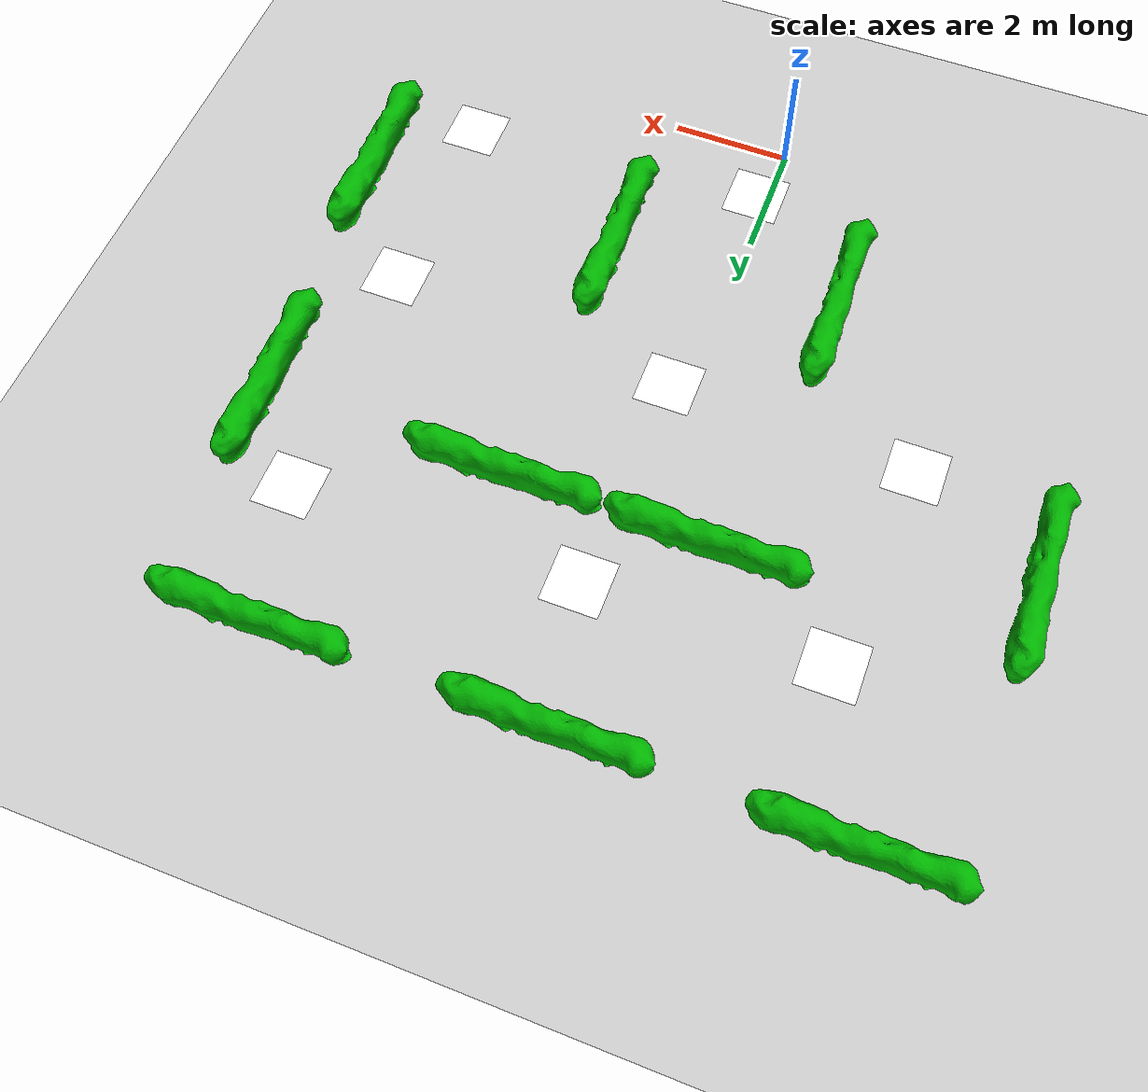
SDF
<sdf version="1.6">
 <world name="default">
  <light name="sun" type="directional">
   <pose>0 0 10 0 -0 0</pose>
   <diffuse>0.8 0.8 0.8 1</diffuse>
   <specular>0.2 0.2 0.2 1</specular>
   <attenuation>
    <range>1000</range>
    <constant>0.9</constant>
    <linear>0.01</linear>
    <quadratic>0.001</quadratic>
   </attenuation>
   <direction>-0.5 0.1 -0.9</direction>
  </light>
  <model name="earth_plane">
   <static>1</static>
   <link name="link">
    <collision name="collision">
     <geometry><plane><normal>0 0 1</normal><size>100 100</size></plane></geometry>
     <surface><friction><ode><mu>100</mu><mu2>50</mu2></ode></friction></surface>
    </collision>
    <visual name="visual">
     <cast_shadows>0</cast_shadows>
     <geometry><plane><normal>0 0 1</normal><size>100 100</size></plane></geometry>
     <material>
      <script>
       <uri>model://earth_plane/materials/scripts</uri>
       <uri>model://earth_plane/materials/textures</uri>
       <name>vrc/earth</name>
      </script>
     </material>
    </visual>
    <velocity_decay><linear>0</linear><angular>0</angular></velocity_decay>
   </link>
  </model>
  <physics name="default_physics" default="0" type="ode">
   <max_step_size>0.001</max_step_size>
   <real_time_factor>1</real_time_factor>
   <real_time_update_rate>1000</real_time_update_rate>
  </physics>
  <scene>
   <ambient>0.4 0.4 0.4 1</ambient>
   <background>0.7 0.7 0.7 1</background>
   <shadows>1</shadows>
   <sky><clouds><speed>12</speed></clouds></sky>
  </scene>
  <spherical_coordinates>
   <surface_model>EARTH_WGS84</surface_model>
   <latitude_deg>0</latitude_deg>
   <longitude_deg>0</longitude_deg>
   <elevation>0</elevation>
   <heading_deg>0</heading_deg>
  </spherical_coordinates>
  <gravity>0 0 -9.8</gravity>
  <magnetic_field>6e-06 2.3e-05 -4.2e-05</magnetic_field>
  <atmosphere type="adiabatic"/>
  <audio><device>default</device></audio>
  <model name="plot_0">
   <link name="link_6">
    <inertial>
     <mass>1</mass>
     <inertia>
      <ixx>0.166667</ixx>
      <ixy>0</ixy>
      <ixz>0</ixz>
      <iyy>0.166667</iyy>
      <iyz>0</iyz>
      <izz>0.166667</izz>
     </inertia>
    </inertial>
    <visual name="visual">
     <pose>0 0 0.35211 0 -0 0</pose>
     <geometry><mesh><uri>model://plot/meshes/plot.stl</uri><scale>1 1 1</scale></mesh></geometry>
     <material>
      <lighting>1</lighting>
      <script><uri>file://media/materials/scripts/gazebo.material</uri><name>Gazebo/Grey</name></script>
      <shader type="pixel"><normal_map>__default__</normal_map></shader>
      <ambient>0.2 0.9 0.1 1</ambient>
      <diffuse>0 0.7 0 1</diffuse>
      <specular>0.01 0.01 0.01 1</specular>
      <emissive>0 0 0 1</emissive>
     </material>
    </visual>
    <collision name="collision">
     <pose>0 0 0.306336 0 -0 0</pose>
     <geometry><mesh><uri>model://plot/meshes/plot.stl</uri><scale>1 1 1</scale></mesh></geometry>
     <surface>
      <friction>
       <ode><mu>1</mu><mu2>1</mu2><fdir1>0 0 0</fdir1><slip1>0</slip1><slip2>0</slip2></ode>
       <torsional>
        <coefficient>1</coefficient>
        <patch_radius>0</patch_radius>
        <surface_radius>0</surface_radius>
        <use_patch_radius>1</use_patch_radius>
        <ode><slip>0</slip></ode>
       </torsional>
      </friction>
      <bounce><restitution_coefficient>0</restitution_coefficient><threshold>1e+06</threshold></bounce>
      <contact>
       <collide_without_contact>0</collide_without_contact>
       <collide_without_contact_bitmask>1</collide_without_contact_bitmask>
       <collide_bitmask>1</collide_bitmask>
       <ode>
        <soft_cfm>0</soft_cfm>
        <soft_erp>0.2</soft_erp>
        <kp>1e+13</kp>
        <kd>1</kd>
        <max_vel>0.01</max_vel>
        <min_depth>0</min_depth>
       </ode>
       <bullet>
        <split_impulse>1</split_impulse>
        <split_impulse_penetration_threshold>-0.01</split_impulse_penetration_threshold>
        <soft_cfm>0</soft_cfm>
        <soft_erp>0.2</soft_erp>
        <kp>1e+13</kp>
        <kd>1</kd>
       </bullet>
      </contact>
     </surface>
    </collision>
   </link>
   <static>1</static>
   <pose>-1.16737 7.66571 0 0 -0 0</pose>
  </model>
  <model name="plot_3">
   <link name="link_6">
    <inertial>
     <mass>1</mass>
     <inertia>
      <ixx>0.166667</ixx>
      <ixy>0</ixy>
      <ixz>0</ixz>
      <iyy>0.166667</iyy>
      <iyz>0</iyz>
      <izz>0.166667</izz>
     </inertia>
    </inertial>
    <visual name="visual">
     <pose>0 0 0.35211 0 -0 0</pose>
     <geometry><mesh><uri>model://plot/meshes/plot.stl</uri><scale>1 1 1</scale></mesh></geometry>
     <material>
      <lighting>1</lighting>
      <script><uri>file://media/materials/scripts/gazebo.material</uri><name>Gazebo/Grey</name></script>
      <shader type="pixel"><normal_map>__default__</normal_map></shader>
      <ambient>0.2 0.9 0.1 1</ambient>
      <diffuse>0 0.7 0 1</diffuse>
      <specular>0.01 0.01 0.01 1</specular>
      <emissive>0 0 0 1</emissive>
     </material>
    </visual>
    <collision name="collision">
     <pose>0 0 0.306336 0 -0 0</pose>
     <geometry><mesh><uri>model://plot/meshes/plot.stl</uri><scale>1 1 1</scale></mesh></geometry>
     <surface>
      <friction>
       <ode><mu>1</mu><mu2>1</mu2><fdir1>0 0 0</fdir1><slip1>0</slip1><slip2>0</slip2></ode>
       <torsional>
        <coefficient>1</coefficient>
        <patch_radius>0</patch_radius>
        <surface_radius>0</surface_radius>
        <use_patch_radius>1</use_patch_radius>
        <ode><slip>0</slip></ode>
       </torsional>
      </friction>
      <bounce><restitution_coefficient>0</restitution_coefficient><threshold>1e+06</threshold></bounce>
      <contact>
       <collide_without_contact>0</collide_without_contact>
       <collide_without_contact_bitmask>1</collide_without_contact_bitmask>
       <collide_bitmask>1</collide_bitmask>
       <ode>
        <soft_cfm>0</soft_cfm>
        <soft_erp>0.2</soft_erp>
        <kp>1e+13</kp>
        <kd>1</kd>
        <max_vel>0.01</max_vel>
        <min_depth>0</min_depth>
       </ode>
       <bullet>
        <split_impulse>1</split_impulse>
        <split_impulse_penetration_threshold>-0.01</split_impulse_penetration_threshold>
        <soft_cfm>0</soft_cfm>
        <soft_erp>0.2</soft_erp>
        <kp>1e+13</kp>
        <kd>1</kd>
       </bullet>
      </contact>
     </surface>
    </collision>
   </link>
   <static>1</static>
   <pose>4.72272 11.1808 0 0 -0 0</pose>
  </model>
  <model name="plot_6">
   <link name="link_6">
    <inertial>
     <mass>1</mass>
     <inertia>
      <ixx>0.166667</ixx>
      <ixy>0</ixy>
      <ixz>0</ixz>
      <iyy>0.166667</iyy>
      <iyz>0</iyz>
      <izz>0.166667</izz>
     </inertia>
    </inertial>
    <visual name="visual">
     <pose>0 0 0.35211 0 -0 0</pose>
     <geometry><mesh><uri>model://plot/meshes/plot.stl</uri><scale>1 1 1</scale></mesh></geometry>
     <material>
      <lighting>1</lighting>
      <script><uri>file://media/materials/scripts/gazebo.material</uri><name>Gazebo/Grey</name></script>
      <shader type="pixel"><normal_map>__default__</normal_map></shader>
      <ambient>0.2 0.9 0.1 1</ambient>
      <diffuse>0 0.7 0 1</diffuse>
      <specular>0.01 0.01 0.01 1</specular>
      <emissive>0 0 0 1</emissive>
     </material>
    </visual>
    <collision name="collision">
     <pose>0 0 0.306336 0 -0 0</pose>
     <geometry><mesh><uri>model://plot/meshes/plot.stl</uri><scale>1 1 1</scale></mesh></geometry>
     <surface>
      <friction>
       <ode><mu>1</mu><mu2>1</mu2><fdir1>0 0 0</fdir1><slip1>0</slip1><slip2>0</slip2></ode>
       <torsional>
        <coefficient>1</coefficient>
        <patch_radius>0</patch_radius>
        <surface_radius>0</surface_radius>
        <use_patch_radius>1</use_patch_radius>
        <ode><slip>0</slip></ode>
       </torsional>
      </friction>
      <bounce><restitution_coefficient>0</restitution_coefficient><threshold>1e+06</threshold></bounce>
      <contact>
       <collide_without_contact>0</collide_without_contact>
       <collide_without_contact_bitmask>1</collide_without_contact_bitmask>
       <collide_bitmask>1</collide_bitmask>
       <ode>
        <soft_cfm>0</soft_cfm>
        <soft_erp>0.2</soft_erp>
        <kp>1e+13</kp>
        <kd>1</kd>
        <max_vel>0.01</max_vel>
        <min_depth>0</min_depth>
       </ode>
       <bullet>
        <split_impulse>1</split_impulse>
        <split_impulse_penetration_threshold>-0.01</split_impulse_penetration_threshold>
        <soft_cfm>0</soft_cfm>
        <soft_erp>0.2</soft_erp>
        <kp>1e+13</kp>
        <kd>1</kd>
       </bullet>
      </contact>
     </surface>
    </collision>
   </link>
   <static>1</static>
   <pose>-4.59771 11.2555 0 0 -0 0</pose>
  </model>
  <model name="plot_7">
   <link name="link_6">
    <inertial>
     <mass>1</mass>
     <inertia>
      <ixx>0.166667</ixx>
      <ixy>0</ixy>
      <ixz>0</ixz>
      <iyy>0.166667</iyy>
      <iyz>0</iyz>
      <izz>0.166667</izz>
     </inertia>
    </inertial>
    <visual name="visual">
     <pose>0 0 0.35211 0 -0 0</pose>
     <geometry><mesh><uri>model://plot/meshes/plot.stl</uri><scale>1 1 1</scale></mesh></geometry>
     <material>
      <lighting>1</lighting>
      <script><uri>file://media/materials/scripts/gazebo.material</uri><name>Gazebo/Grey</name></script>
      <shader type="pixel"><normal_map>__default__</normal_map></shader>
      <ambient>0.2 0.9 0.1 1</ambient>
      <diffuse>0 0.7 0 1</diffuse>
      <specular>0.01 0.01 0.01 1</specular>
      <emissive>0 0 0 1</emissive>
     </material>
    </visual>
    <collision name="collision">
     <pose>0 0 0.306336 0 -0 0</pose>
     <geometry><mesh><uri>model://plot/meshes/plot.stl</uri><scale>1 1 1</scale></mesh></geometry>
     <surface>
      <friction>
       <ode><mu>1</mu><mu2>1</mu2><fdir1>0 0 0</fdir1><slip1>0</slip1><slip2>0</slip2></ode>
       <torsional>
        <coefficient>1</coefficient>
        <patch_radius>0</patch_radius>
        <surface_radius>0</surface_radius>
        <use_patch_radius>1</use_patch_radius>
        <ode><slip>0</slip></ode>
       </torsional>
      </friction>
      <bounce><restitution_coefficient>0</restitution_coefficient><threshold>1e+06</threshold></bounce>
      <contact>
       <collide_without_contact>0</collide_without_contact>
       <collide_without_contact_bitmask>1</collide_without_contact_bitmask>
       <collide_bitmask>1</collide_bitmask>
       <ode>
        <soft_cfm>0</soft_cfm>
        <soft_erp>0.2</soft_erp>
        <kp>1e+13</kp>
        <kd>1</kd>
        <max_vel>0.01</max_vel>
        <min_depth>0</min_depth>
       </ode>
       <bullet>
        <split_impulse>1</split_impulse>
        <split_impulse_penetration_threshold>-0.01</split_impulse_penetration_threshold>
        <soft_cfm>0</soft_cfm>
        <soft_erp>0.2</soft_erp>
        <kp>1e+13</kp>
        <kd>1</kd>
       </bullet>
      </contact>
     </surface>
    </collision>
   </link>
   <static>1</static>
   <pose>2.18824 7.61154 0 0 -0 0</pose>
  </model>
  <model name="plot_9">
   <link name="link_6">
    <inertial>
     <mass>1</mass>
     <inertia>
      <ixx>0.166667</ixx>
      <ixy>0</ixy>
      <ixz>0</ixz>
      <iyy>0.166667</iyy>
      <iyz>0</iyz>
      <izz>0.166667</izz>
     </inertia>
    </inertial>
    <visual name="visual">
     <pose>0 0 0.35211 0 -0 0</pose>
     <geometry><mesh><uri>model://plot/meshes/plot.stl</uri><scale>1 1 1</scale></mesh></geometry>
     <material>
      <lighting>1</lighting>
      <script><uri>file://media/materials/scripts/gazebo.material</uri><name>Gazebo/Grey</name></script>
      <shader type="pixel"><normal_map>__default__</normal_map></shader>
      <ambient>0.2 0.9 0.1 1</ambient>
      <diffuse>0 0.7 0 1</diffuse>
      <specular>0.01 0.01 0.01 1</specular>
      <emissive>0 0 0 1</emissive>
     </material>
    </visual>
    <collision name="collision">
     <pose>0 0 0.306336 0 -0 0</pose>
     <geometry><mesh><uri>model://plot/meshes/plot.stl</uri><scale>1 1 1</scale></mesh></geometry>
     <surface>
      <friction>
       <ode><mu>1</mu><mu2>1</mu2><fdir1>0 0 0</fdir1><slip1>0</slip1><slip2>0</slip2></ode>
       <torsional>
        <coefficient>1</coefficient>
        <patch_radius>0</patch_radius>
        <surface_radius>0</surface_radius>
        <use_patch_radius>1</use_patch_radius>
        <ode><slip>0</slip></ode>
       </torsional>
      </friction>
      <bounce><restitution_coefficient>0</restitution_coefficient><threshold>1e+06</threshold></bounce>
      <contact>
       <collide_without_contact>0</collide_without_contact>
       <collide_without_contact_bitmask>1</collide_without_contact_bitmask>
       <collide_bitmask>1</collide_bitmask>
       <ode>
        <soft_cfm>0</soft_cfm>
        <soft_erp>0.2</soft_erp>
        <kp>1e+13</kp>
        <kd>1</kd>
        <max_vel>0.01</max_vel>
        <min_depth>0</min_depth>
       </ode>
       <bullet>
        <split_impulse>1</split_impulse>
        <split_impulse_penetration_threshold>-0.01</split_impulse_penetration_threshold>
        <soft_cfm>0</soft_cfm>
        <soft_erp>0.2</soft_erp>
        <kp>1e+13</kp>
        <kd>1</kd>
       </bullet>
      </contact>
     </surface>
    </collision>
   </link>
   <static>1</static>
   <pose>-1.76103 2.79915 0 0 -0 1.59458</pose>
  </model>
  <model name="aruco_visual_marker_0">
   <link name="marker">
    <visual name="visual">
     <geometry><box><size>0.889 0.889 1e-05</size></box></geometry>
     <material>
      <script>
       <uri>model://aruco_visual_marker_0/materials/scripts</uri>
       <uri>model://aruco_visual_marker_0/materials/textures</uri>
       <name>ArucoVisualMarker0/Marker</name>
      </script>
      <ambient>1 1 1 1</ambient>
      <diffuse>1 1 1 1</diffuse>
      <specular>0 0 0 1</specular>
      <emissive>1 1 1 0</emissive>
      <shader type="vertex"><normal_map>__default__</normal_map></shader>
     </material>
    </visual>
    <collision name="collision"><geometry><box><size>0.889 0.889 1e-05</size></box></geometry></collision>
   </link>
   <joint name="marker_JOINT_marker_pad" type="revolute">
    <parent>marker</parent>
    <child>marker_pad</child>
    <axis>
     <xyz>0 0 1</xyz>
     <limit><upper>0</upper><lower>0</lower></limit>
     <use_parent_model_frame>0</use_parent_model_frame>
     <dynamics><spring_reference>0</spring_reference><spring_stiffness>0</spring_stiffness></dynamics>
    </axis>
   </joint>
   <static>1</static>
   <pose>-3.78194 5.78553 0.879941 0 -0 0</pose>
  </model>
  <model name="aruco_visual_marker_2">
   <link name="marker">
    <visual name="visual">
     <geometry><box><size>0.889 0.889 1e-05</size></box></geometry>
     <material>
      <script>
       <uri>model://aruco_visual_marker_2/materials/scripts</uri>
       <uri>model://aruco_visual_marker_2/materials/textures</uri>
       <name>ArucoVisualMarker2/Marker</name>
      </script>
      <ambient>1 1 1 1</ambient>
      <diffuse>1 1 1 1</diffuse>
      <specular>0 0 0 1</specular>
      <emissive>1 1 1 0</emissive>
      <shader type="vertex"><normal_map>__default__</normal_map></shader>
     </material>
    </visual>
    <collision name="collision"><geometry><box><size>0.889 0.889 1e-05</size></box></geometry></collision>
   </link>
   <joint name="marker_JOINT_marker_pad" type="revolute">
    <parent>marker</parent>
    <child>marker_pad</child>
    <axis>
     <xyz>0 0 1</xyz>
     <limit><upper>0</upper><lower>0</lower></limit>
     <use_parent_model_frame>0</use_parent_model_frame>
     <dynamics><spring_reference>0</spring_reference><spring_stiffness>0</spring_stiffness></dynamics>
    </axis>
   </joint>
   <static>1</static>
   <pose>4.77355 5.55358 1.37616 0 -0 0</pose>
  </model>
  <model name="aruco_visual_marker_1">
   <link name="marker">
    <visual name="visual">
     <geometry><box><size>0.889 0.889 1e-05</size></box></geometry>
     <material>
      <script>
       <uri>model://aruco_visual_marker_1/materials/scripts</uri>
       <uri>model://aruco_visual_marker_1/materials/textures</uri>
       <name>ArucoVisualMarker1/Marker</name>
      </script>
      <ambient>1 1 1 1</ambient>
      <diffuse>1 1 1 1</diffuse>
      <specular>0 0 0 1</specular>
      <emissive>1 1 1 0</emissive>
      <shader type="vertex"><normal_map>__default__</normal_map></shader>
     </material>
    </visual>
    <collision name="collision"><geometry><box><size>0.889 0.889 1e-05</size></box></geometry></collision>
   </link>
   <joint name="marker_JOINT_marker_pad" type="revolute">
    <parent>marker</parent>
    <child>marker_pad</child>
    <axis>
     <xyz>0 0 1</xyz>
     <limit><upper>0</upper><lower>0</lower></limit>
     <use_parent_model_frame>0</use_parent_model_frame>
     <dynamics><spring_reference>0</spring_reference><spring_stiffness>0</spring_stiffness></dynamics>
    </axis>
   </joint>
   <static>1</static>
   <pose>5 2 0.903874 0 -0 0</pose>
  </model>
  <model name="aruco_visual_marker_3">
   <link name="marker">
    <visual name="visual">
     <geometry><box><size>0.889 0.889 1e-05</size></box></geometry>
     <material>
      <script>
       <uri>model://aruco_visual_marker_3/materials/scripts</uri>
       <uri>model://aruco_visual_marker_3/materials/textures</uri>
       <name>ArucoVisualMarker3/Marker</name>
      </script>
      <ambient>1 1 1 1</ambient>
      <diffuse>1 1 1 1</diffuse>
      <specular>0 0 0 1</specular>
      <emissive>1 1 1 0</emissive>
      <shader type="vertex"><normal_map>__default__</normal_map></shader>
     </material>
    </visual>
    <collision name="collision"><geometry><box><size>0.889 0.889 1e-05</size></box></geometry></collision>
   </link>
   <joint name="marker_JOINT_marker_pad" type="revolute">
    <parent>marker</parent>
    <child>marker_pad</child>
    <axis>
     <xyz>0 0 1</xyz>
     <limit><upper>0</upper><lower>0</lower></limit>
     <use_parent_model_frame>0</use_parent_model_frame>
     <dynamics><spring_reference>0</spring_reference><spring_stiffness>0</spring_stiffness></dynamics>
    </axis>
   </joint>
   <static>1</static>
   <pose>4.75383 9.3801 1.15082 0 -0 0</pose>
  </model>
  <model name="aruco_visual_marker_4">
   <link name="marker">
    <visual name="visual">
     <geometry><box><size>0.889 0.889 1e-05</size></box></geometry>
     <material>
      <script>
       <uri>model://aruco_visual_marker_4/materials/scripts</uri>
       <uri>model://aruco_visual_marker_4/materials/textures</uri>
       <name>ArucoVisualMarker4/Marker</name>
      </script>
      <ambient>1 1 1 1</ambient>
      <diffuse>1 1 1 1</diffuse>
      <specular>0 0 0 1</specular>
      <emissive>1 1 1 0</emissive>
      <shader type="vertex"><normal_map>__default__</normal_map></shader>
     </material>
    </visual>
    <collision name="collision"><geometry><box><size>0.889 0.889 1e-05</size></box></geometry></collision>
   </link>
   <joint name="marker_JOINT_marker_pad" type="revolute">
    <parent>marker</parent>
    <child>marker_pad</child>
    <axis>
     <xyz>0 0 1</xyz>
     <limit><upper>0</upper><lower>0</lower></limit>
     <use_parent_model_frame>0</use_parent_model_frame>
     <dynamics><spring_reference>0</spring_reference><spring_stiffness>0</spring_stiffness></dynamics>
    </axis>
   </joint>
   <static>1</static>
   <pose>0.170854 5.68612 0.979095 0 -0 0</pose>
  </model>
  <model name="aruco_visual_marker_5">
   <link name="marker">
    <visual name="visual">
     <geometry><box><size>0.889 0.889 1e-05</size></box></geometry>
     <material>
      <script>
       <uri>model://aruco_visual_marker_5/materials/scripts</uri>
       <uri>model://aruco_visual_marker_5/materials/textures</uri>
       <name>ArucoVisualMarker5/Marker</name>
      </script>
      <ambient>1 1 1 1</ambient>
      <diffuse>1 1 1 1</diffuse>
      <specular>0 0 0 1</specular>
      <emissive>1 1 1 0</emissive>
      <shader type="vertex"><normal_map>__default__</normal_map></shader>
     </material>
    </visual>
    <collision name="collision"><geometry><box><size>0.889 0.889 1e-05</size></box></geometry></collision>
   </link>
   <joint name="marker_JOINT_marker_pad" type="revolute">
    <parent>marker</parent>
    <child>marker_pad</child>
    <axis>
     <xyz>0 0 1</xyz>
     <limit><upper>0</upper><lower>0</lower></limit>
     <use_parent_model_frame>0</use_parent_model_frame>
     <dynamics><spring_reference>0</spring_reference><spring_stiffness>0</spring_stiffness></dynamics>
    </axis>
   </joint>
   <static>1</static>
   <pose>0.190049 9.41903 1.3659 0 -0 0</pose>
  </model>
  <model name="aruco_visual_marker_6">
   <link name="marker">
    <visual name="visual">
     <geometry><box><size>0.889 0.889 1e-05</size></box></geometry>
     <material>
      <script>
       <uri>model://aruco_visual_marker_6/materials/scripts</uri>
       <uri>model://aruco_visual_marker_6/materials/textures</uri>
       <name>ArucoVisualMarker6/Marker</name>
      </script>
      <ambient>1 1 1 1</ambient>
      <diffuse>1 1 1 1</diffuse>
      <specular>0 0 0 1</specular>
      <emissive>1 1 1 0</emissive>
      <shader type="vertex"><normal_map>__default__</normal_map></shader>
     </material>
    </visual>
    <collision name="collision"><geometry><box><size>0.889 0.889 1e-05</size></box></geometry></collision>
   </link>
   <joint name="marker_JOINT_marker_pad" type="revolute">
    <parent>marker</parent>
    <child>marker_pad</child>
    <axis>
     <xyz>0 0 1</xyz>
     <limit><upper>0</upper><lower>0</lower></limit>
     <use_parent_model_frame>0</use_parent_model_frame>
     <dynamics><spring_reference>0</spring_reference><spring_stiffness>0</spring_stiffness></dynamics>
    </axis>
   </joint>
   <static>1</static>
   <pose>-3.49121 9.3533 1.34759 0 -0 0</pose>
  </model>
  <model name="aruco_visual_marker_7">
   <link name="marker">
    <visual name="visual">
     <geometry><box><size>0.889 0.889 1e-05</size></box></geometry>
     <material>
      <script>
       <uri>model://aruco_visual_marker_7/materials/scripts</uri>
       <uri>model://aruco_visual_marker_7/materials/textures</uri>
       <name>ArucoVisualMarker7/Marker</name>
      </script>
      <ambient>1 1 1 1</ambient>
      <diffuse>1 1 1 1</diffuse>
      <specular>0 0 0 1</specular>
      <emissive>1 1 1 0</emissive>
      <shader type="vertex"><normal_map>__default__</normal_map></shader>
     </material>
    </visual>
    <collision name="collision"><geometry><box><size>0.889 0.889 1e-05</size></box></geometry></collision>
   </link>
   <joint name="marker_JOINT_marker_pad" type="revolute">
    <parent>marker</parent>
    <child>marker_pad</child>
    <axis>
     <xyz>0 0 1</xyz>
     <limit><upper>0</upper><lower>0</lower></limit>
     <use_parent_model_frame>0</use_parent_model_frame>
     <dynamics><spring_reference>0</spring_reference><spring_stiffness>0</spring_stiffness></dynamics>
    </axis>
   </joint>
   <static>1</static>
   <pose>0 2 1.31507 0 -0 0</pose>
  </model>
  <model name="plot_9_clone">
   <link name="link_6">
    <inertial>
     <mass>1</mass>
     <inertia>
      <ixx>0.166667</ixx>
      <ixy>0</ixy>
      <ixz>0</ixz>
      <iyy>0.166667</iyy>
      <iyz>0</iyz>
      <izz>0.166667</izz>
     </inertia>
    </inertial>
    <visual name="visual">
     <pose>0 0 0.35211 0 -0 0</pose>
     <geometry><mesh><uri>model://plot/meshes/plot.stl</uri><scale>1 1 1</scale></mesh></geometry>
     <material>
      <lighting>1</lighting>
      <script><uri>file://media/materials/scripts/gazebo.material</uri><name>Gazebo/Grey</name></script>
      <shader type="pixel"><normal_map>__default__</normal_map></shader>
      <ambient>0.2 0.9 0.1 1</ambient>
      <diffuse>0 0.7 0 1</diffuse>
      <specular>0.01 0.01 0.01 1</specular>
      <emissive>0 0 0 1</emissive>
     </material>
    </visual>
    <collision name="collision">
     <pose>0 0 0.306336 0 -0 0</pose>
     <geometry><mesh><uri>model://plot/meshes/plot.stl</uri><scale>1 1 1</scale></mesh></geometry>
     <surface>
      <friction>
       <ode><mu>1</mu><mu2>1</mu2><fdir1>0 0 0</fdir1><slip1>0</slip1><slip2>0</slip2></ode>
       <torsional>
        <coefficient>1</coefficient>
        <patch_radius>0</patch_radius>
        <surface_radius>0</surface_radius>
        <use_patch_radius>1</use_patch_radius>
        <ode><slip>0</slip></ode>
       </torsional>
      </friction>
      <bounce><restitution_coefficient>0</restitution_coefficient><threshold>1e+06</threshold></bounce>
      <contact>
       <collide_without_contact>0</collide_without_contact>
       <collide_without_contact_bitmask>1</collide_without_contact_bitmask>
       <collide_bitmask>1</collide_bitmask>
       <ode>
        <soft_cfm>0</soft_cfm>
        <soft_erp>0.2</soft_erp>
        <kp>1e+13</kp>
        <kd>1</kd>
        <max_vel>0.01</max_vel>
        <min_depth>0</min_depth>
       </ode>
       <bullet>
        <split_impulse>1</split_impulse>
        <split_impulse_penetration_threshold>-0.01</split_impulse_penetration_threshold>
        <soft_cfm>0</soft_cfm>
        <soft_erp>0.2</soft_erp>
        <kp>1e+13</kp>
        <kd>1</kd>
       </bullet>
      </contact>
     </surface>
    </collision>
   </link>
   <static>1</static>
   <pose>2.15291 2.79217 0 0 -0 1.59458</pose>
  </model>
  <model name="plot_9_clone_0">
   <link name="link_6">
    <inertial>
     <mass>1</mass>
     <inertia>
      <ixx>0.166667</ixx>
      <ixy>0</ixy>
      <ixz>0</ixz>
      <iyy>0.166667</iyy>
      <iyz>0</iyz>
      <izz>0.166667</izz>
     </inertia>
    </inertial>
    <visual name="visual">
     <pose>0 0 0.35211 0 -0 0</pose>
     <geometry><mesh><uri>model://plot/meshes/plot.stl</uri><scale>1 1 1</scale></mesh></geometry>
     <material>
      <lighting>1</lighting>
      <script><uri>file://media/materials/scripts/gazebo.material</uri><name>Gazebo/Grey</name></script>
      <shader type="pixel"><normal_map>__default__</normal_map></shader>
      <ambient>0.2 0.9 0.1 1</ambient>
      <diffuse>0 0.7 0 1</diffuse>
      <specular>0.01 0.01 0.01 1</specular>
      <emissive>0 0 0 1</emissive>
     </material>
    </visual>
    <collision name="collision">
     <pose>0 0 0.306336 0 -0 0</pose>
     <geometry><mesh><uri>model://plot/meshes/plot.stl</uri><scale>1 1 1</scale></mesh></geometry>
     <surface>
      <friction>
       <ode><mu>1</mu><mu2>1</mu2><fdir1>0 0 0</fdir1><slip1>0</slip1><slip2>0</slip2></ode>
       <torsional>
        <coefficient>1</coefficient>
        <patch_radius>0</patch_radius>
        <surface_radius>0</surface_radius>
        <use_patch_radius>1</use_patch_radius>
        <ode><slip>0</slip></ode>
       </torsional>
      </friction>
      <bounce><restitution_coefficient>0</restitution_coefficient><threshold>1e+06</threshold></bounce>
      <contact>
       <collide_without_contact>0</collide_without_contact>
       <collide_without_contact_bitmask>1</collide_without_contact_bitmask>
       <collide_bitmask>1</collide_bitmask>
       <ode>
        <soft_cfm>0</soft_cfm>
        <soft_erp>0.2</soft_erp>
        <kp>1e+13</kp>
        <kd>1</kd>
        <max_vel>0.01</max_vel>
        <min_depth>0</min_depth>
       </ode>
       <bullet>
        <split_impulse>1</split_impulse>
        <split_impulse_penetration_threshold>-0.01</split_impulse_penetration_threshold>
        <soft_cfm>0</soft_cfm>
        <soft_erp>0.2</soft_erp>
        <kp>1e+13</kp>
        <kd>1</kd>
       </bullet>
      </contact>
     </surface>
    </collision>
   </link>
   <static>1</static>
   <pose>6.69826 2.65672 0 0 -0 1.59458</pose>
  </model>
  <model name="plot_3_clone">
   <link name="link_6">
    <inertial>
     <mass>1</mass>
     <inertia>
      <ixx>0.166667</ixx>
      <ixy>0</ixy>
      <ixz>0</ixz>
      <iyy>0.166667</iyy>
      <iyz>0</iyz>
      <izz>0.166667</izz>
     </inertia>
    </inertial>
    <visual name="visual">
     <pose>0 0 0.35211 0 -0 0</pose>
     <geometry><mesh><uri>model://plot/meshes/plot.stl</uri><scale>1 1 1</scale></mesh></geometry>
     <material>
      <lighting>1</lighting>
      <script><uri>file://media/materials/scripts/gazebo.material</uri><name>Gazebo/Grey</name></script>
      <shader type="pixel"><normal_map>__default__</normal_map></shader>
      <ambient>0.2 0.9 0.1 1</ambient>
      <diffuse>0 0.7 0 1</diffuse>
      <specular>0.01 0.01 0.01 1</specular>
      <emissive>0 0 0 1</emissive>
     </material>
    </visual>
    <collision name="collision">
     <pose>0 0 0.306336 0 -0 0</pose>
     <geometry><mesh><uri>model://plot/meshes/plot.stl</uri><scale>1 1 1</scale></mesh></geometry>
     <surface>
      <friction>
       <ode><mu>1</mu><mu2>1</mu2><fdir1>0 0 0</fdir1><slip1>0</slip1><slip2>0</slip2></ode>
       <torsional>
        <coefficient>1</coefficient>
        <patch_radius>0</patch_radius>
        <surface_radius>0</surface_radius>
        <use_patch_radius>1</use_patch_radius>
        <ode><slip>0</slip></ode>
       </torsional>
      </friction>
      <bounce><restitution_coefficient>0</restitution_coefficient><threshold>1e+06</threshold></bounce>
      <contact>
       <collide_without_contact>0</collide_without_contact>
       <collide_without_contact_bitmask>1</collide_without_contact_bitmask>
       <collide_bitmask>1</collide_bitmask>
       <ode>
        <soft_cfm>0</soft_cfm>
        <soft_erp>0.2</soft_erp>
        <kp>1e+13</kp>
        <kd>1</kd>
        <max_vel>0.01</max_vel>
        <min_depth>0</min_depth>
       </ode>
       <bullet>
        <split_impulse>1</split_impulse>
        <split_impulse_penetration_threshold>-0.01</split_impulse_penetration_threshold>
        <soft_cfm>0</soft_cfm>
        <soft_erp>0.2</soft_erp>
        <kp>1e+13</kp>
        <kd>1</kd>
       </bullet>
      </contact>
     </surface>
    </collision>
   </link>
   <static>1</static>
   <pose>0.02941 11.1887 0 0 -0 0</pose>
  </model>
  <model name="plot_9_clone_clone">
   <link name="link_6">
    <inertial>
     <mass>1</mass>
     <inertia>
      <ixx>0.166667</ixx>
      <ixy>0</ixy>
      <ixz>0</ixz>
      <iyy>0.166667</iyy>
      <iyz>0</iyz>
      <izz>0.166667</izz>
     </inertia>
    </inertial>
    <visual name="visual">
     <pose>0 0 0.35211 0 -0 0</pose>
     <geometry><mesh><uri>model://plot/meshes/plot.stl</uri><scale>1 1 1</scale></mesh></geometry>
     <material>
      <lighting>1</lighting>
      <script><uri>file://media/materials/scripts/gazebo.material</uri><name>Gazebo/Grey</name></script>
      <shader type="pixel"><normal_map>__default__</normal_map></shader>
      <ambient>0.2 0.9 0.1 1</ambient>
      <diffuse>0 0.7 0 1</diffuse>
      <specular>0.01 0.01 0.01 1</specular>
      <emissive>0 0 0 1</emissive>
     </material>
    </visual>
    <collision name="collision">
     <pose>0 0 0.306336 0 -0 0</pose>
     <geometry><mesh><uri>model://plot/meshes/plot.stl</uri><scale>1 1 1</scale></mesh></geometry>
     <surface>
      <friction>
       <ode><mu>1</mu><mu2>1</mu2><fdir1>0 0 0</fdir1><slip1>0</slip1><slip2>0</slip2></ode>
       <torsional>
        <coefficient>1</coefficient>
        <patch_radius>0</patch_radius>
        <surface_radius>0</surface_radius>
        <use_patch_radius>1</use_patch_radius>
        <ode><slip>0</slip></ode>
       </torsional>
      </friction>
      <bounce><restitution_coefficient>0</restitution_coefficient><threshold>1e+06</threshold></bounce>
      <contact>
       <collide_without_contact>0</collide_without_contact>
       <collide_without_contact_bitmask>1</collide_without_contact_bitmask>
       <collide_bitmask>1</collide_bitmask>
       <ode>
        <soft_cfm>0</soft_cfm>
        <soft_erp>0.2</soft_erp>
        <kp>1e+13</kp>
        <kd>1</kd>
        <max_vel>0.01</max_vel>
        <min_depth>0</min_depth>
       </ode>
       <bullet>
        <split_impulse>1</split_impulse>
        <split_impulse_penetration_threshold>-0.01</split_impulse_penetration_threshold>
        <soft_cfm>0</soft_cfm>
        <soft_erp>0.2</soft_erp>
        <kp>1e+13</kp>
        <kd>1</kd>
       </bullet>
      </contact>
     </surface>
    </collision>
   </link>
   <static>1</static>
   <pose>-6.00313 6.57193 0 0 -0 1.59458</pose>
  </model>
  <model name="plot_9_clone_0_clone">
   <link name="link_6">
    <inertial>
     <mass>1</mass>
     <inertia>
      <ixx>0.166667</ixx>
      <ixy>0</ixy>
      <ixz>0</ixz>
      <iyy>0.166667</iyy>
      <iyz>0</iyz>
      <izz>0.166667</izz>
     </inertia>
    </inertial>
    <visual name="visual">
     <pose>0 0 0.35211 0 -0 0</pose>
     <geometry><mesh><uri>model://plot/meshes/plot.stl</uri><scale>1 1 1</scale></mesh></geometry>
     <material>
      <lighting>1</lighting>
      <script><uri>file://media/materials/scripts/gazebo.material</uri><name>Gazebo/Grey</name></script>
      <shader type="pixel"><normal_map>__default__</normal_map></shader>
      <ambient>0.2 0.9 0.1 1</ambient>
      <diffuse>0 0.7 0 1</diffuse>
      <specular>0.01 0.01 0.01 1</specular>
      <emissive>0 0 0 1</emissive>
     </material>
    </visual>
    <collision name="collision">
     <pose>0 0 0.306336 0 -0 0</pose>
     <geometry><mesh><uri>model://plot/meshes/plot.stl</uri><scale>1 1 1</scale></mesh></geometry>
     <surface>
      <friction>
       <ode><mu>1</mu><mu2>1</mu2><fdir1>0 0 0</fdir1><slip1>0</slip1><slip2>0</slip2></ode>
       <torsional>
        <coefficient>1</coefficient>
        <patch_radius>0</patch_radius>
        <surface_radius>0</surface_radius>
        <use_patch_radius>1</use_patch_radius>
        <ode><slip>0</slip></ode>
       </torsional>
      </friction>
      <bounce><restitution_coefficient>0</restitution_coefficient><threshold>1e+06</threshold></bounce>
      <contact>
       <collide_without_contact>0</collide_without_contact>
       <collide_without_contact_bitmask>1</collide_without_contact_bitmask>
       <collide_bitmask>1</collide_bitmask>
       <ode>
        <soft_cfm>0</soft_cfm>
        <soft_erp>0.2</soft_erp>
        <kp>1e+13</kp>
        <kd>1</kd>
        <max_vel>0.01</max_vel>
        <min_depth>0</min_depth>
       </ode>
       <bullet>
        <split_impulse>1</split_impulse>
        <split_impulse_penetration_threshold>-0.01</split_impulse_penetration_threshold>
        <soft_cfm>0</soft_cfm>
        <soft_erp>0.2</soft_erp>
        <kp>1e+13</kp>
        <kd>1</kd>
       </bullet>
      </contact>
     </surface>
    </collision>
   </link>
   <static>1</static>
   <pose>6.36675 7.3705 0 0 -0 1.59458</pose>
  </model>
 </world>
</sdf>
